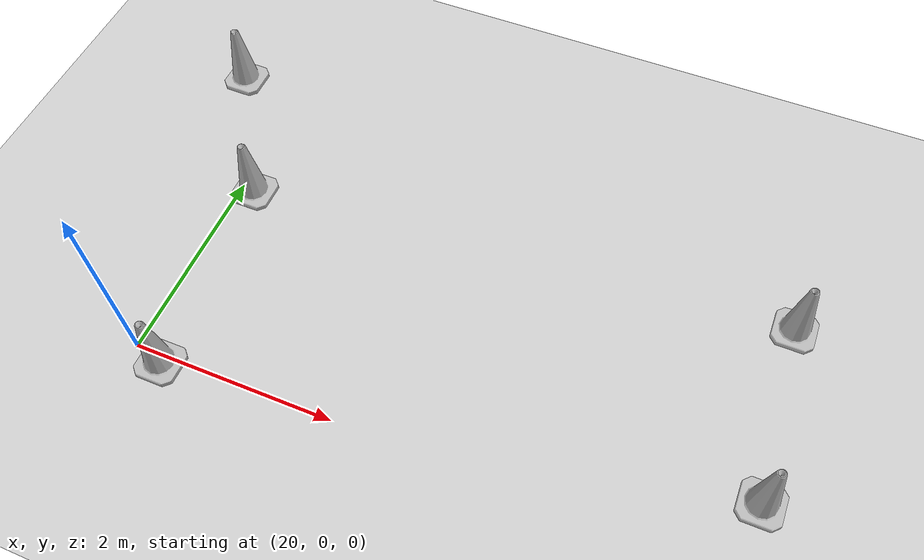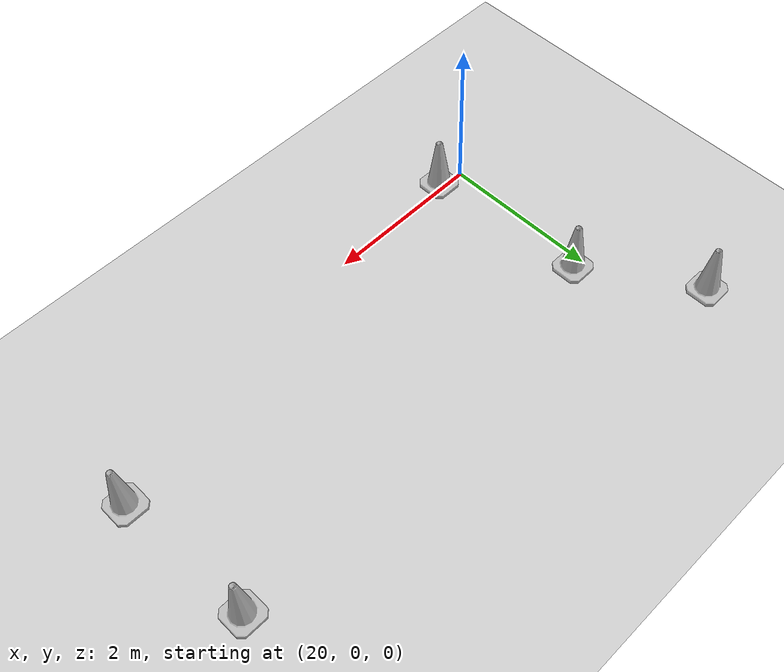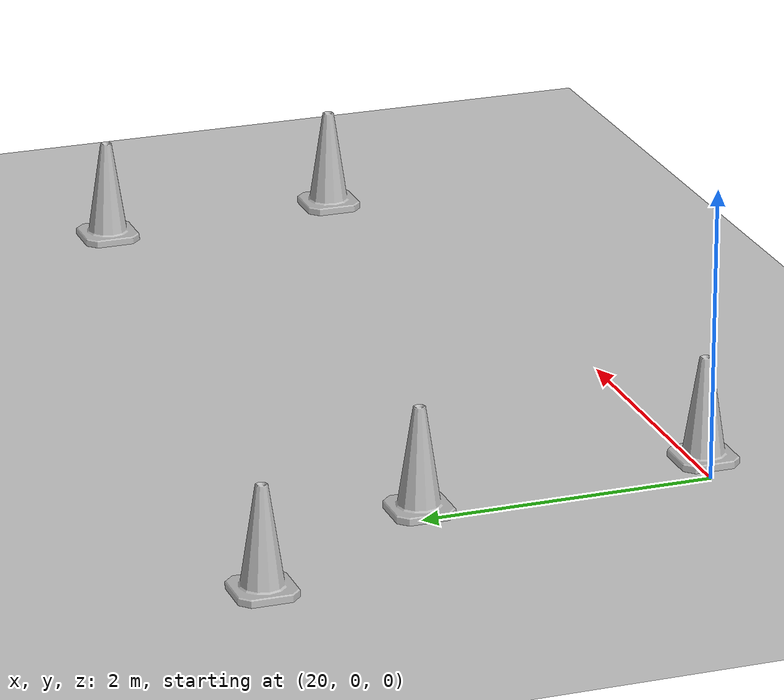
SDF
<sdf version="1.7">
 <world name="default">
  <model name="Construction_Cone_b_18">
   <link name="link">
    <inertial>
     <inertia><ixx>1</ixx><ixy>0</ixy><ixz>0</ixz><iyy>1</iyy><iyz>0</iyz><izz>1</izz></inertia>
     <mass>1</mass>
    </inertial>
    <visual name="visual">
     <geometry>
      <mesh><scale>8 8 6.7</scale><uri>./construction_cone/meshes/construction_cone_b.dae</uri></mesh>
     </geometry>
     <material><shader type="pixel"/></material>
    </visual>
    <collision name="collision">
     <geometry>
      <mesh><uri>./construction_cone/meshes/construction_cone_b.dae</uri><scale>8 8 6.7</scale></mesh>
     </geometry>
     <surface>
      <friction>
       <ode><mu>1</mu><mu2>1</mu2><fdir1>0 0 0</fdir1><slip1>0</slip1><slip2>0</slip2></ode>
       <torsional>
        <coefficient>1</coefficient>
        <patch_radius>0</patch_radius>
        <surface_radius>0</surface_radius>
        <use_patch_radius>1</use_patch_radius>
        <ode><slip>0</slip></ode>
       </torsional>
      </friction>
      <bounce><restitution_coefficient>0</restitution_coefficient><threshold>1e+06</threshold></bounce>
      <contact>
       <collide_without_contact>0</collide_without_contact>
       <collide_without_contact_bitmask>1</collide_without_contact_bitmask>
       <collide_bitmask>1</collide_bitmask>
       <ode>
        <soft_cfm>0</soft_cfm>
        <soft_erp>0.2</soft_erp>
        <kp>1e+13</kp>
        <kd>1</kd>
        <max_vel>0.01</max_vel>
        <min_depth>0</min_depth>
       </ode>
       <bullet>
        <split_impulse>1</split_impulse>
        <split_impulse_penetration_threshold>-0.01</split_impulse_penetration_threshold>
        <soft_cfm>0</soft_cfm>
        <soft_erp>0.2</soft_erp>
        <kp>1e+13</kp>
        <kd>1</kd>
       </bullet>
      </contact>
     </surface>
    </collision>
   </link>
   <static>0</static>
   <pose>19.3008 3.29623 -0 0 -0 0</pose>
  </model>
  <model name="Construction_Cone_b_19">
   <link name="link">
    <inertial>
     <inertia><ixx>1</ixx><ixy>0</ixy><ixz>0</ixz><iyy>1</iyy><iyz>0</iyz><izz>1</izz></inertia>
     <mass>1</mass>
    </inertial>
    <visual name="visual">
     <geometry>
      <mesh><scale>8 8 6.7</scale><uri>./construction_cone/meshes/construction_cone_b.dae</uri></mesh>
     </geometry>
     <material><shader type="pixel"/></material>
    </visual>
    <collision name="collision">
     <geometry>
      <mesh><uri>./construction_cone/meshes/construction_cone_b.dae</uri><scale>8 8 6.7</scale></mesh>
     </geometry>
     <surface>
      <friction>
       <ode><mu>1</mu><mu2>1</mu2><fdir1>0 0 0</fdir1><slip1>0</slip1><slip2>0</slip2></ode>
       <torsional>
        <coefficient>1</coefficient>
        <patch_radius>0</patch_radius>
        <surface_radius>0</surface_radius>
        <use_patch_radius>1</use_patch_radius>
        <ode><slip>0</slip></ode>
       </torsional>
      </friction>
      <bounce><restitution_coefficient>0</restitution_coefficient><threshold>1e+06</threshold></bounce>
      <contact>
       <collide_without_contact>0</collide_without_contact>
       <collide_without_contact_bitmask>1</collide_without_contact_bitmask>
       <collide_bitmask>1</collide_bitmask>
       <ode>
        <soft_cfm>0</soft_cfm>
        <soft_erp>0.2</soft_erp>
        <kp>1e+13</kp>
        <kd>1</kd>
        <max_vel>0.01</max_vel>
        <min_depth>0</min_depth>
       </ode>
       <bullet>
        <split_impulse>1</split_impulse>
        <split_impulse_penetration_threshold>-0.01</split_impulse_penetration_threshold>
        <soft_cfm>0</soft_cfm>
        <soft_erp>0.2</soft_erp>
        <kp>1e+13</kp>
        <kd>1</kd>
       </bullet>
      </contact>
     </surface>
    </collision>
   </link>
   <static>0</static>
   <pose>20.142 1.96534 -0 -0 -0 -0</pose>
  </model>
  <model name="Construction_Cone_b_20">
   <link name="link">
    <inertial>
     <inertia><ixx>1</ixx><ixy>0</ixy><ixz>0</ixz><iyy>1</iyy><iyz>0</iyz><izz>1</izz></inertia>
     <mass>1</mass>
    </inertial>
    <visual name="visual">
     <geometry>
      <mesh><scale>8 8 6.7</scale><uri>./construction_cone/meshes/construction_cone_b.dae</uri></mesh>
     </geometry>
     <material><shader type="pixel"/></material>
    </visual>
    <collision name="collision">
     <geometry>
      <mesh><uri>./construction_cone/meshes/construction_cone_b.dae</uri><scale>8 8 6.7</scale></mesh>
     </geometry>
     <surface>
      <friction>
       <ode><mu>1</mu><mu2>1</mu2><fdir1>0 0 0</fdir1><slip1>0</slip1><slip2>0</slip2></ode>
       <torsional>
        <coefficient>1</coefficient>
        <patch_radius>0</patch_radius>
        <surface_radius>0</surface_radius>
        <use_patch_radius>1</use_patch_radius>
        <ode><slip>0</slip></ode>
       </torsional>
      </friction>
      <bounce><restitution_coefficient>0</restitution_coefficient><threshold>1e+06</threshold></bounce>
      <contact>
       <collide_without_contact>0</collide_without_contact>
       <collide_without_contact_bitmask>1</collide_without_contact_bitmask>
       <collide_bitmask>1</collide_bitmask>
       <ode>
        <soft_cfm>0</soft_cfm>
        <soft_erp>0.2</soft_erp>
        <kp>1e+13</kp>
        <kd>1</kd>
        <max_vel>0.01</max_vel>
        <min_depth>0</min_depth>
       </ode>
       <bullet>
        <split_impulse>1</split_impulse>
        <split_impulse_penetration_threshold>-0.01</split_impulse_penetration_threshold>
        <soft_cfm>0</soft_cfm>
        <soft_erp>0.2</soft_erp>
        <kp>1e+13</kp>
        <kd>1</kd>
       </bullet>
      </contact>
     </surface>
    </collision>
   </link>
   <static>0</static>
   <pose>20.3057 -0.077252 -0 0 -0 0</pose>
  </model>
  <model name="Construction_Cone_y_30">
   <link name="link">
    <inertial>
     <pose>0 0 0.1 0 -0 0</pose>
     <inertia><ixx>1</ixx><ixy>0</ixy><ixz>0</ixz><iyy>1</iyy><iyz>0</iyz><izz>1</izz></inertia>
     <mass>1</mass>
    </inertial>
    <pose>0 0 0.1 0 -0 0</pose>
    <visual name="visual">
     <geometry>
      <mesh><scale>8 8 6.7</scale><uri>./construction_cone/meshes/construction_cone_y.dae</uri></mesh>
     </geometry>
     <material><shader type="pixel"/></material>
     <pose>0 0 0.1 0 -0 0</pose>
    </visual>
    <collision name="collision">
     <pose>0 0 0.1 0 -0 0</pose>
     <geometry>
      <mesh><uri>./construction_cone/meshes/construction_cone_y.dae</uri><scale>8 8 6.7</scale></mesh>
     </geometry>
     <surface>
      <friction>
       <ode><mu>1</mu><mu2>1</mu2><fdir1>0 0 0</fdir1><slip1>0</slip1><slip2>0</slip2></ode>
       <torsional>
        <coefficient>1</coefficient>
        <patch_radius>0</patch_radius>
        <surface_radius>0</surface_radius>
        <use_patch_radius>1</use_patch_radius>
        <ode><slip>0</slip></ode>
       </torsional>
      </friction>
      <bounce><restitution_coefficient>0</restitution_coefficient><threshold>1e+06</threshold></bounce>
      <contact>
       <collide_without_contact>0</collide_without_contact>
       <collide_without_contact_bitmask>1</collide_without_contact_bitmask>
       <collide_bitmask>1</collide_bitmask>
       <ode>
        <soft_cfm>0</soft_cfm>
        <soft_erp>0.2</soft_erp>
        <kp>1e+13</kp>
        <kd>1</kd>
        <max_vel>0.01</max_vel>
        <min_depth>0</min_depth>
       </ode>
       <bullet>
        <split_impulse>1</split_impulse>
        <split_impulse_penetration_threshold>-0.01</split_impulse_penetration_threshold>
        <soft_cfm>0</soft_cfm>
        <soft_erp>0.2</soft_erp>
        <kp>1e+13</kp>
        <kd>1</kd>
       </bullet>
      </contact>
     </surface>
    </collision>
   </link>
   <static>0</static>
   <pose>25.6044 2.42536 -0.2 0 -0 0</pose>
  </model>
  <model name="Construction_Cone_y_31">
   <link name="link">
    <inertial>
     <pose>0 0 0.1 0 -0 0</pose>
     <inertia><ixx>1</ixx><ixy>0</ixy><ixz>0</ixz><iyy>1</iyy><iyz>0</iyz><izz>1</izz></inertia>
     <mass>1</mass>
    </inertial>
    <pose>0 0 0.1 0 -0 0</pose>
    <visual name="visual">
     <geometry>
      <mesh><scale>8 8 6.7</scale><uri>./construction_cone/meshes/construction_cone_y.dae</uri></mesh>
     </geometry>
     <material><shader type="pixel"/></material>
     <pose>0 0 0.1 0 -0 0</pose>
    </visual>
    <collision name="collision">
     <pose>0 0 0.1 0 -0 0</pose>
     <geometry>
      <mesh><uri>./construction_cone/meshes/construction_cone_y.dae</uri><scale>8 8 6.7</scale></mesh>
     </geometry>
     <surface>
      <friction>
       <ode><mu>1</mu><mu2>1</mu2><fdir1>0 0 0</fdir1><slip1>0</slip1><slip2>0</slip2></ode>
       <torsional>
        <coefficient>1</coefficient>
        <patch_radius>0</patch_radius>
        <surface_radius>0</surface_radius>
        <use_patch_radius>1</use_patch_radius>
        <ode><slip>0</slip></ode>
       </torsional>
      </friction>
      <bounce><restitution_coefficient>0</restitution_coefficient><threshold>1e+06</threshold></bounce>
      <contact>
       <collide_without_contact>0</collide_without_contact>
       <collide_without_contact_bitmask>1</collide_without_contact_bitmask>
       <collide_bitmask>1</collide_bitmask>
       <ode>
        <soft_cfm>0</soft_cfm>
        <soft_erp>0.2</soft_erp>
        <kp>1e+13</kp>
        <kd>1</kd>
        <max_vel>0.01</max_vel>
        <min_depth>0</min_depth>
       </ode>
       <bullet>
        <split_impulse>1</split_impulse>
        <split_impulse_penetration_threshold>-0.01</split_impulse_penetration_threshold>
        <soft_cfm>0</soft_cfm>
        <soft_erp>0.2</soft_erp>
        <kp>1e+13</kp>
        <kd>1</kd>
       </bullet>
      </contact>
     </surface>
    </collision>
   </link>
   <static>0</static>
   <pose>25.702 0.677407 -0.2 0 -0 0</pose>
  </model>
  <model name="ground_plane">
   <static>1</static>
   <link name="link">
    <collision name="collision">
     <geometry><plane><normal>0 0 1</normal><size>100 100</size></plane></geometry>
     <surface>
      <contact><collide_bitmask>65535</collide_bitmask></contact>
      <friction><ode><mu>100</mu><mu2>50</mu2></ode></friction>
     </surface>
    </collision>
    <visual name="visual">
     <cast_shadows>0</cast_shadows>
     <geometry><plane><normal>0 0 1</normal><size>100 100</size></plane></geometry>
     <material>
      <script><uri>file://media/materials/scripts/gazebo.material</uri><name>Gazebo/Grey</name></script>
     </material>
    </visual>
   </link>
   <pose>0 0 -0.001 0 -0 0</pose>
  </model>
 </world>
</sdf>
